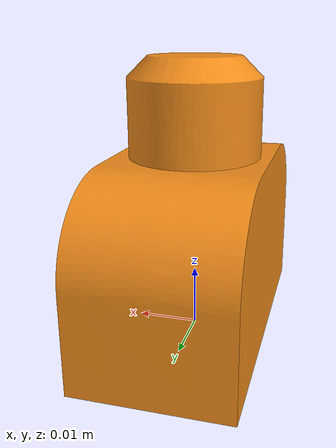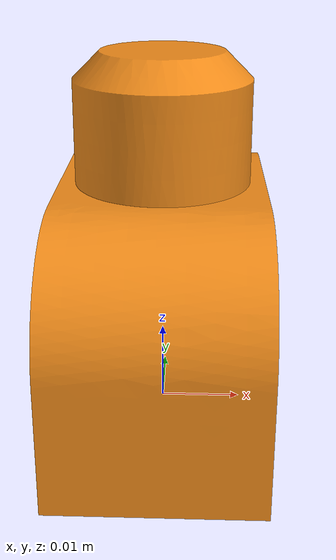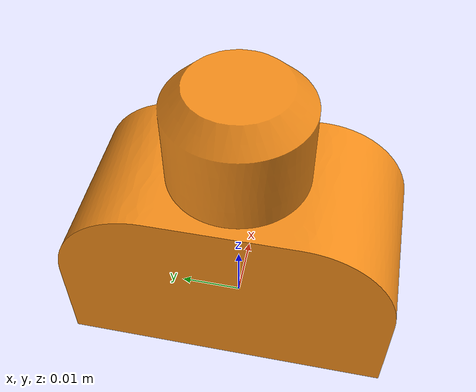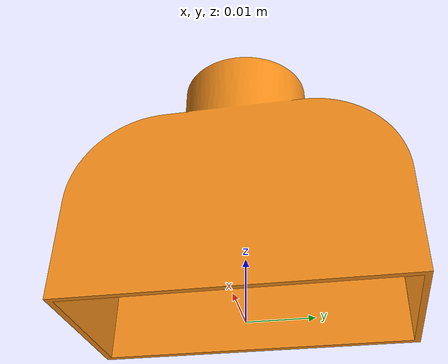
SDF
<?xml version='1.0'?>
<sdf version="1.6">

         <model name="mesh">
             <static>0</static>
             <self_collide>0</self_collide>
             <allow_auto_disable>1</allow_auto_disable>

            <pose>0 0 0 0 -0 0</pose>

             <link name="link">

                 <gravity>1</gravity>
                 <self_collide>0</self_collide>
                 <kinematic>0</kinematic>

                <pose>0 0 0 0 -0 0</pose>

                <inertial>

                    <mass> 1.0 </mass>

                    <pose>  8.2000000000e-07 -2.6000000000e-06  2.5677030000e-02 0 0 0 </pose>

                    <inertia>
                        <ixx>  6.2309494842e-04 </ixx>
                        <ixy> -3.7123555621e-08 </ixy>
                        <ixz> -6.3388268632e-09 </ixz>
                        <iyy>  3.8273563779e-04 </iyy>
                        <iyz> -4.6640799931e-08 </iyz>
                        <izz>  5.2758218955e-04 </izz>
                    </inertia>
                </inertial>

                 <collision name="collision">

                     <max_contacts>20</max_contacts>

                    <pose>0 0 0 0 -0 0</pose>

                     <geometry>
                         <mesh>
                             <uri>model://X1-Y2-Z2-TWINFILLET/mesh/X1-Y2-Z2-TWINFILLET.stl</uri>

                             <scale>0.8 0.8 0.8</scale>
                         </mesh>
                     </geometry>

                     <surface></surface>
                 </collision>

                 <visual name="visual">
                     <cast_shadows>1</cast_shadows>
                     <transparency>0</transparency>

                     <pose>0 0 0 0 -0 0</pose>

                     <material>

                         <script>
                             <uri>file://media/materials/scripts/gazebo.material</uri>

                             <name>Gazebo/Orange</name>
                         </script>
                         <shader type="vertex">
                           <normal_map>__default__</normal_map>
                         </shader>

                     </material>

                     <geometry>
                         <mesh>
                             <uri>model://X1-Y2-Z2-TWINFILLET/mesh/X1-Y2-Z2-TWINFILLET.stl</uri>

                             <scale>0.8 0.8 0.8</scale>
                         </mesh>
                     </geometry>
                 </visual>
             </link>
         </model>
     </sdf>
